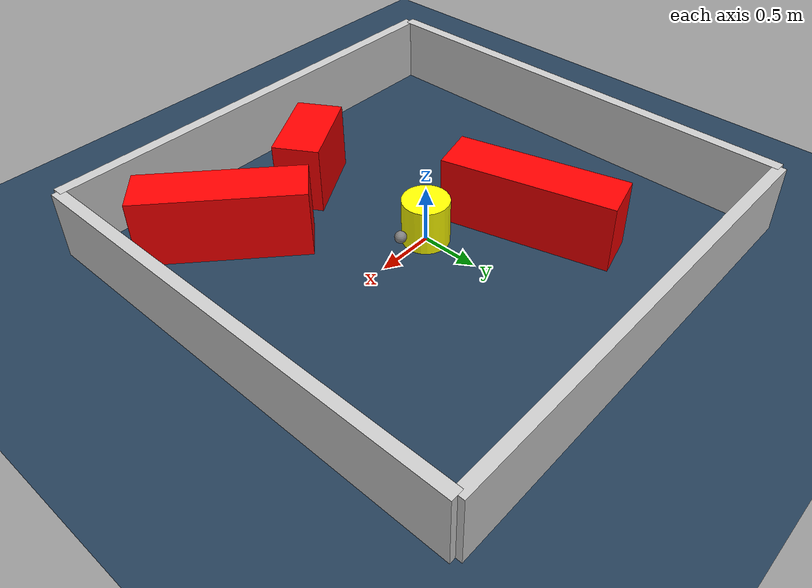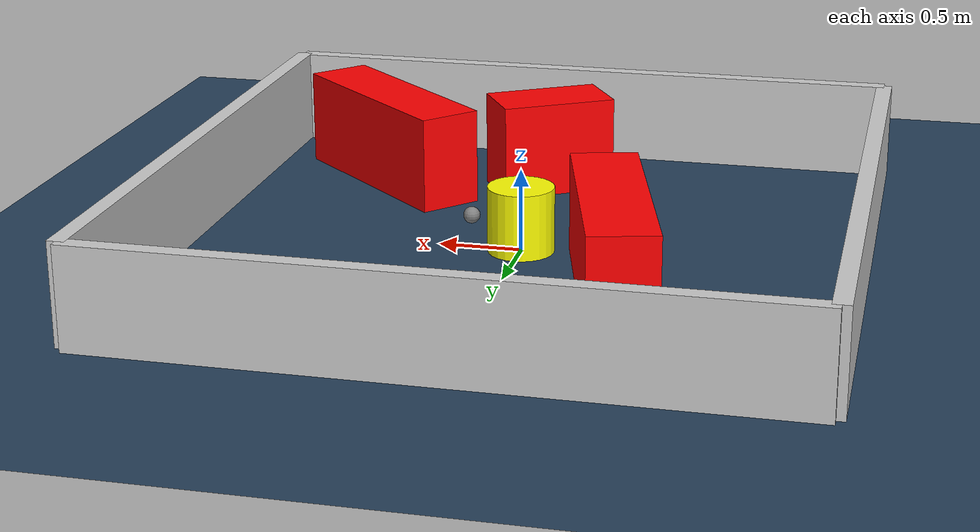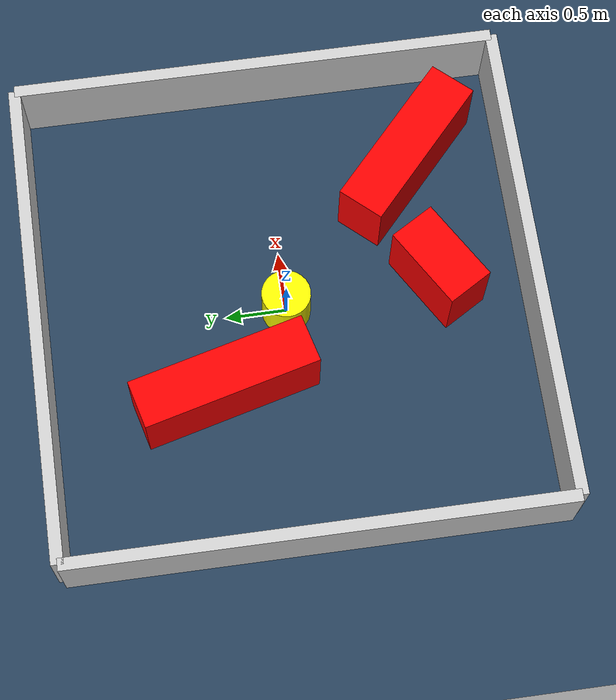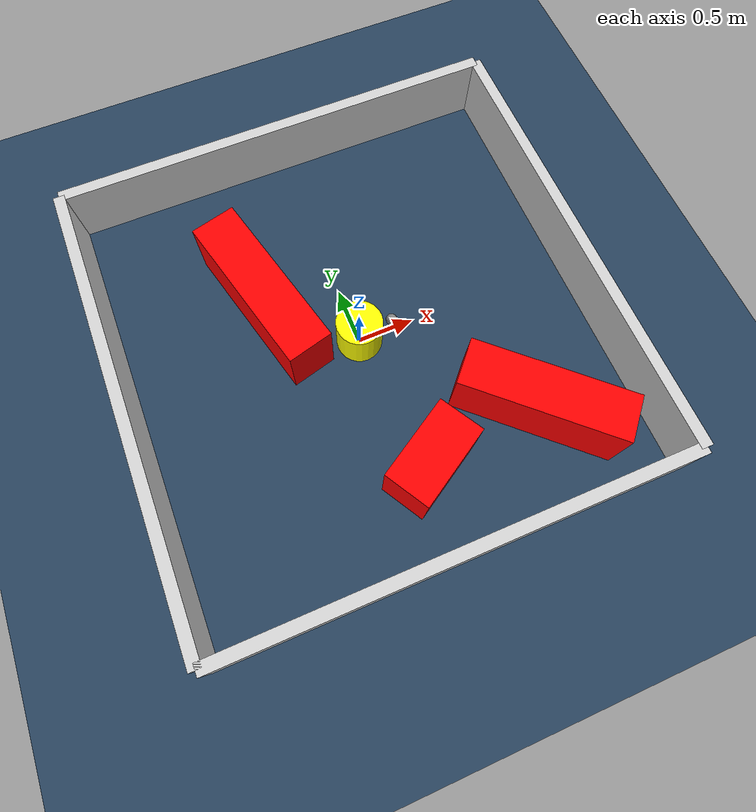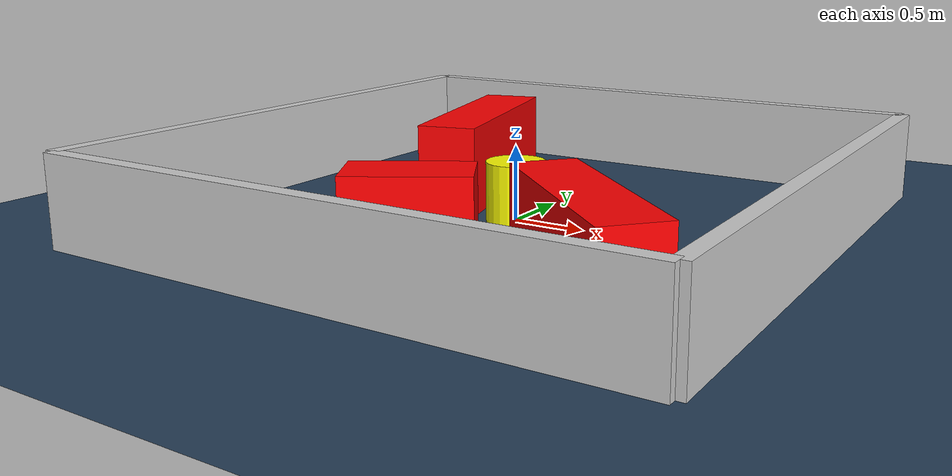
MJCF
<?xml version="1.0" ?>
<mujoco model="generated_environment">
  <option timestep="0.01" integrator="RK4" cone="elliptic"/>
  <default>
    <geom density="1"/>
  </default>
  <asset>
    <texture builtin="gradient" height="3072" rgb1="0.3 0.5 0.7" rgb2="0 0 0" type="skybox" width="512"/>
    <texture builtin="checker" height="300" mark="edge" markrgb="0.8 0.8 0.8" name="groundplane" rgb1="0.2 0.3 0.4" rgb2="0.1 0.2 0.3" type="2d" width="300"/>
    <material name="groundplane" reflectance="0.2" texrepeat="5 5" texture="groundplane" texuniform="true"/>
    <material name="robot" rgba="0.0 1.0 0.0 1"/>
  </asset>
  <worldbody>
    <light dir="0 0 -1" directional="true" pos="0 0 1.5"/>
    <geom condim="4" friction="1.0 0.005 0.001" material="groundplane" name="floor" size="0 0 0.05" type="plane"/>
    <body name="walls">
      <geom name="wall_1" condim="4" pos="-2.0 0.0 0.3" rgba="0.800000011920929 0.800000011920929 0.800000011920929 1.0" size="0.05 2.0 0.3" type="box"/>
      <geom name="wall_2" condim="4" pos="2.0 0.0 0.3" rgba="0.800000011920929 0.800000011920929 0.800000011920929 1.0" size="0.05 2.0 0.3" type="box"/>
      <geom name="wall_3" condim="4" pos="0.0 -2.0 0.3" rgba="0.800000011920929 0.800000011920929 0.800000011920929 1.0" size="2.0 0.05 0.3" type="box"/>
      <geom name="wall_4" condim="4" pos="0.0 2.0 0.3" rgba="0.800000011920929 0.800000011920929 0.800000011920929 1.0" size="2.0 0.05 0.3" type="box"/>
    </body>
    <body name="robot">
      <joint name="joint_x" type="slide" pos="0 0 0" axis="1 0 0"/>
      <joint name="joint_y" type="slide" pos="0 0 0" axis="0 1 0"/>
      <geom name="robot" type="sphere" pos="0.3 0.0 0.2" size="0.05" mass="5." friction="1.0 0.005 0.0001" condim="4" rgba="0.5 0.5 0.5 1.0"/>
      <site name="sensor_ball"/>
    </body>
    <body name="obstacle_movable_1">
      <geom name="obstacle_movable_1" condim="4" pos="0.0 0.0 0.2" euler="0 0 0.0" friction="1.0 0.005 0.001" rgba="1.0 1.0 0.0 1.0" size="0.2 0.2 0.0" type="cylinder" mass="0.1"/>
      <joint type="free"/>
    </body>
    <body name="obstacle_2_static">
      <geom name="obstacle_2_static" condim="4" pos="0.09322738945993159 -1.2622832053162352 0.3" euler="0 0 30.929794917057244" friction="1.0 0.005 0.001" rgba="1 0 0 1" size="0.3662768593981063 0.2 0.3" type="box"/>
    </body>
    <body name="obstacle_3_static">
      <geom name="obstacle_3_static" condim="4" pos="-0.6518934401912461 0.5747709498965732 0.3" euler="0 0 104.50552222821713" friction="1.0 0.005 0.001" rgba="1 0 0 1" size="0.7307628624540539 0.2 0.3" type="box"/>
    </body>
    <body name="obstacle_4_static">
      <geom name="obstacle_4_static" condim="4" pos="1.1212824893549587 -1.1523677151714804 0.3" euler="0 0 137.7701661558976" friction="1.0 0.005 0.001" rgba="1 0 0 1" size="0.6929323381629602 0.2 0.3" type="box"/>
    </body>
  </worldbody>
  <actuator>
    <motor name="actuator_x" joint="joint_x" gear="1" ctrlrange="-1 1"/>
    <motor name="actuator_y" joint="joint_y" gear="1" ctrlrange="-1 1"/>
  </actuator>
</mujoco>
